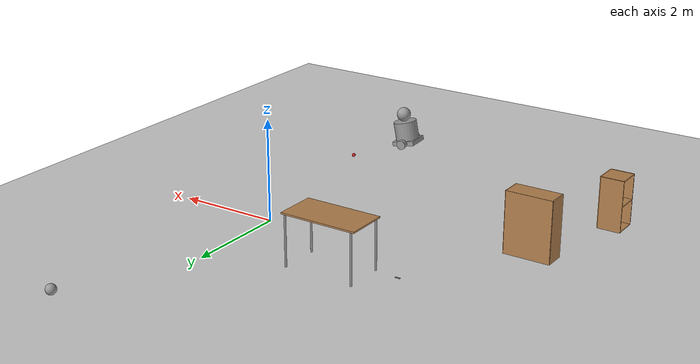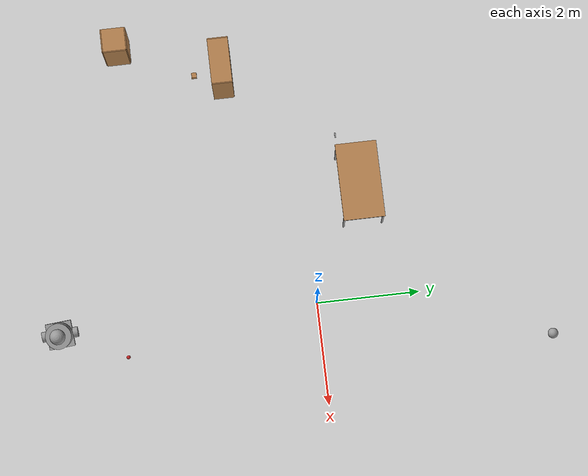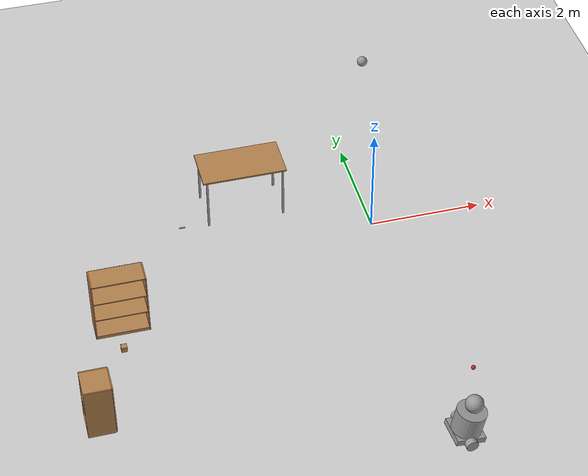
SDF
<sdf version="1.6">
 <world name="default">
  <model name="ground_plane">
   <static>1</static>
   <link name="link">
    <collision name="collision">
     <geometry><plane><normal>0 0 1</normal><size>100 100</size></plane></geometry>
     <surface>
      <contact><collide_bitmask>65535</collide_bitmask></contact>
      <friction><ode><mu>100</mu><mu2>50</mu2></ode></friction>
     </surface>
    </collision>
    <visual name="visual">
     <cast_shadows>0</cast_shadows>
     <geometry><plane><normal>0 0 1</normal><size>100 100</size></plane></geometry>
     <material>
      <script><uri>file://media/materials/scripts/gazebo.material</uri><name>Gazebo/Grey</name></script>
     </material>
    </visual>
   </link>
  </model>
  <model name="bookshelf">
   <static>1</static>
   <link name="link">
    <inertial><mass>1</mass></inertial>
    <collision name="back">
     <pose>0 0.005 0.6 0 -0 0</pose>
     <geometry><box><size>0.9 0.01 1.2</size></box></geometry>
    </collision>
    <visual name="visual1">
     <pose>0 0.005 0.6 0 -0 0</pose>
     <geometry><box><size>0.9 0.01 1.2</size></box></geometry>
     <material>
      <script><uri>file://media/materials/scripts/gazebo.material</uri><name>Gazebo/Wood</name></script>
     </material>
    </visual>
    <collision name="left_side">
     <pose>0.45 -0.195 0.6 0 -0 0</pose>
     <geometry><box><size>0.02 0.4 1.2</size></box></geometry>
    </collision>
    <visual name="visual2">
     <pose>0.45 -0.195 0.6 0 -0 0</pose>
     <geometry><box><size>0.02 0.4 1.2</size></box></geometry>
     <material>
      <script><uri>file://media/materials/scripts/gazebo.material</uri><name>Gazebo/Wood</name></script>
     </material>
    </visual>
    <collision name="right_side">
     <pose>-0.45 -0.195 0.6 0 -0 0</pose>
     <geometry><box><size>0.02 0.4 1.2</size></box></geometry>
    </collision>
    <visual name="visual3">
     <pose>-0.45 -0.195 0.6 0 -0 0</pose>
     <geometry><box><size>0.02 0.4 1.2</size></box></geometry>
     <material>
      <script><uri>file://media/materials/scripts/gazebo.material</uri><name>Gazebo/Wood</name></script>
     </material>
    </visual>
    <collision name="bottom">
     <pose>0 -0.195 0.03 0 -0 0</pose>
     <geometry><box><size>0.88 0.4 0.06</size></box></geometry>
    </collision>
    <visual name="visual4">
     <pose>0 -0.195 0.03 0 -0 0</pose>
     <geometry><box><size>0.88 0.4 0.06</size></box></geometry>
     <material>
      <script><uri>file://media/materials/scripts/gazebo.material</uri><name>Gazebo/Wood</name></script>
     </material>
    </visual>
    <collision name="top">
     <pose>0 -0.195 1.19 0 -0 0</pose>
     <geometry><box><size>0.88 0.4 0.02</size></box></geometry>
    </collision>
    <visual name="visual5">
     <pose>0 -0.195 1.19 0 -0 0</pose>
     <geometry><box><size>0.88 0.4 0.02</size></box></geometry>
     <material>
      <script><uri>file://media/materials/scripts/gazebo.material</uri><name>Gazebo/Wood</name></script>
     </material>
    </visual>
    <collision name="low_shelf">
     <pose>0 -0.195 0.43 0 -0 0</pose>
     <geometry><box><size>0.88 0.4 0.02</size></box></geometry>
    </collision>
    <visual name="visual6">
     <pose>0 -0.195 0.43 0 -0 0</pose>
     <geometry><box><size>0.88 0.4 0.02</size></box></geometry>
     <material>
      <script><uri>file://media/materials/scripts/gazebo.material</uri><name>Gazebo/Wood</name></script>
     </material>
    </visual>
    <collision name="high_shelf">
     <pose>0 -0.195 0.8 0 -0 0</pose>
     <geometry><box><size>0.88 0.4 0.02</size></box></geometry>
    </collision>
    <visual name="visual7">
     <pose>0 -0.195 0.8 0 -0 0</pose>
     <geometry><box><size>0.88 0.4 0.02</size></box></geometry>
     <material>
      <script><uri>file://media/materials/scripts/gazebo.material</uri><name>Gazebo/Wood</name></script>
     </material>
    </visual>
   </link>
   <pose>-4.75283 -1.15714 0 0 -0 0</pose>
  </model>
  <model name="cabinet">
   <static>1</static>
   <link name="cabinet_bottom_plate">
    <inertial>
     <pose>0 0 -1 0 -0 0</pose>
     <inertia><ixx>2.05</ixx><ixy>0</ixy><ixz>0</ixz><iyy>2.05</iyy><iyz>0</iyz><izz>2.05</izz></inertia>
     <mass>25</mass>
    </inertial>
    <collision name="cabinet_bottom_plate_geom">
     <pose>0 0 0.01 0 -0 0</pose>
     <geometry><box><size>0.45 0.45 0.02</size></box></geometry>
    </collision>
    <visual name="cabinet_bottom_plate_geom_visual">
     <pose>0 0 0.01 0 -0 0</pose>
     <geometry><box><size>0.45 0.45 0.02</size></box></geometry>
     <material>
      <script><uri>file://media/materials/scripts/gazebo.material</uri><name>Gazebo/Wood</name></script>
     </material>
    </visual>
    <collision name="cabinet_bottom_plate_geom_cabinet_back_plate">
     <pose>0.235 0 0.51 0 -0 0</pose>
     <geometry><box><size>0.02 0.45 1.02</size></box></geometry>
    </collision>
    <visual name="cabinet_bottom_plate_geom_cabinet_back_plate_visual">
     <pose>0.235 0 0.51 0 -0 0</pose>
     <geometry><box><size>0.02 0.45 1.02</size></box></geometry>
     <material>
      <script><uri>file://media/materials/scripts/gazebo.material</uri><name>Gazebo/Wood</name></script>
     </material>
    </visual>
    <collision name="cabinet_bottom_plate_geom_cabinet_left_plate">
     <pose>0 0.235 0.51 0 -0 0</pose>
     <geometry><box><size>0.45 0.02 1.02</size></box></geometry>
    </collision>
    <visual name="cabinet_bottom_plate_geom_cabinet_left_plate_visual">
     <pose>0 0.235 0.51 0 -0 0</pose>
     <geometry><box><size>0.45 0.02 1.02</size></box></geometry>
     <material>
      <script><uri>file://media/materials/scripts/gazebo.material</uri><name>Gazebo/Wood</name></script>
     </material>
    </visual>
    <collision name="cabinet_bottom_plate_geom_cabinet_middle_plate">
     <pose>0 0 0.51 0 -0 0</pose>
     <geometry><box><size>0.45 0.45 0.02</size></box></geometry>
    </collision>
    <visual name="cabinet_bottom_plate_geom_cabinet_middle_plate_visual">
     <pose>0 0 0.51 0 -0 0</pose>
     <geometry><box><size>0.45 0.45 0.02</size></box></geometry>
     <material>
      <script><uri>file://media/materials/scripts/gazebo.material</uri><name>Gazebo/Wood</name></script>
     </material>
    </visual>
    <collision name="cabinet_bottom_plate_geom_cabinet_right_plate">
     <pose>0 -0.235 0.51 0 -0 0</pose>
     <geometry><box><size>0.45 0.02 1.02</size></box></geometry>
    </collision>
    <visual name="cabinet_bottom_plate_geom_cabinet_right_plate_visual">
     <pose>0 -0.235 0.51 0 -0 0</pose>
     <geometry><box><size>0.45 0.02 1.02</size></box></geometry>
     <material>
      <script><uri>file://media/materials/scripts/gazebo.material</uri><name>Gazebo/Wood</name></script>
     </material>
    </visual>
    <collision name="cabinet_bottom_plate_geom_cabinet_top_plate">
     <pose>0 0 1.01 0 -0 0</pose>
     <geometry><box><size>0.45 0.45 0.02</size></box></geometry>
    </collision>
    <visual name="cabinet_bottom_plate_geom_cabinet_top_plate_visual">
     <pose>0 0 1.01 0 -0 0</pose>
     <geometry><box><size>0.45 0.45 0.02</size></box></geometry>
     <material>
      <script><uri>file://media/materials/scripts/gazebo.material</uri><name>Gazebo/Wood</name></script>
     </material>
    </visual>
   </link>
   <pose>-5.45597 -3.36278 0 0 -0 0</pose>
  </model>
  <model name="RoboModel_0">
   <link name="link_0">
    <pose>0.004 1e-06 -0.17 0 -0 0</pose>
    <inertial>
     <mass>1</mass>
     <inertia>
      <ixx>0.166667</ixx>
      <ixy>0</ixy>
      <ixz>0</ixz>
      <iyy>0.166667</iyy>
      <iyz>0</iyz>
      <izz>0.166667</izz>
     </inertia>
    </inertial>
    <visual name="visual">
     <geometry><box><size>0.5 0.5 0.1</size></box></geometry>
     <material>
      <lighting>1</lighting>
      <script><uri>file://media/materials/scripts/gazebo.material</uri><name>Gazebo/Grey</name></script>
      <shader type="pixel"><normal_map>__default__</normal_map></shader>
      <ambient>0.3 0.3 0.3 1</ambient>
      <diffuse>0.7 0.7 0.7 1</diffuse>
      <specular>0.01 0.01 0.01 1</specular>
      <emissive>0 0 0 1</emissive>
     </material>
    </visual>
    <collision name="collision">
     <geometry><box><size>0.5 0.5 0.1</size></box></geometry>
     <surface>
      <friction>
       <ode><mu>1</mu><mu2>1</mu2><fdir1>0 0 0</fdir1><slip1>0</slip1><slip2>0</slip2></ode>
       <torsional>
        <coefficient>1</coefficient>
        <patch_radius>0</patch_radius>
        <surface_radius>0</surface_radius>
        <use_patch_radius>1</use_patch_radius>
        <ode><slip>0</slip></ode>
       </torsional>
      </friction>
      <bounce><restitution_coefficient>0</restitution_coefficient><threshold>1e+06</threshold></bounce>
      <contact>
       <collide_without_contact>0</collide_without_contact>
       <collide_without_contact_bitmask>1</collide_without_contact_bitmask>
       <collide_bitmask>1</collide_bitmask>
       <ode>
        <soft_cfm>0</soft_cfm>
        <soft_erp>0.2</soft_erp>
        <kp>1e+13</kp>
        <kd>1</kd>
        <max_vel>0.01</max_vel>
        <min_depth>0</min_depth>
       </ode>
       <bullet>
        <split_impulse>1</split_impulse>
        <split_impulse_penetration_threshold>-0.01</split_impulse_penetration_threshold>
        <soft_cfm>0</soft_cfm>
        <soft_erp>0.2</soft_erp>
        <kp>1e+13</kp>
        <kd>1</kd>
       </bullet>
      </contact>
     </surface>
    </collision>
   </link>
   <link name="link_1">
    <pose>0.004 1e-06 0.08 0 -0 0</pose>
    <inertial>
     <mass>1</mass>
     <inertia><ixx>0.145833</ixx><ixy>0</ixy><ixz>0</ixz><iyy>0.145833</iyy><iyz>0</iyz><izz>0.125</izz></inertia>
    </inertial>
    <visual name="visual">
     <geometry><cylinder><radius>0.25</radius><length>0.4</length></cylinder></geometry>
     <material>
      <lighting>1</lighting>
      <script><uri>file://media/materials/scripts/gazebo.material</uri><name>Gazebo/Grey</name></script>
      <shader type="pixel"><normal_map>__default__</normal_map></shader>
      <ambient>0.3 0.3 0.3 1</ambient>
      <diffuse>0.7 0.7 0.7 1</diffuse>
      <specular>0.01 0.01 0.01 1</specular>
      <emissive>0 0 0 1</emissive>
     </material>
    </visual>
    <collision name="collision">
     <geometry><cylinder><radius>0.25</radius><length>0.4</length></cylinder></geometry>
     <surface>
      <friction>
       <ode><mu>1</mu><mu2>1</mu2><fdir1>0 0 0</fdir1><slip1>0</slip1><slip2>0</slip2></ode>
       <torsional>
        <coefficient>1</coefficient>
        <patch_radius>0</patch_radius>
        <surface_radius>0</surface_radius>
        <use_patch_radius>1</use_patch_radius>
        <ode><slip>0</slip></ode>
       </torsional>
      </friction>
      <bounce><restitution_coefficient>0</restitution_coefficient><threshold>1e+06</threshold></bounce>
      <contact>
       <collide_without_contact>0</collide_without_contact>
       <collide_without_contact_bitmask>1</collide_without_contact_bitmask>
       <collide_bitmask>1</collide_bitmask>
       <ode>
        <soft_cfm>0</soft_cfm>
        <soft_erp>0.2</soft_erp>
        <kp>1e+13</kp>
        <kd>1</kd>
        <max_vel>0.01</max_vel>
        <min_depth>0</min_depth>
       </ode>
       <bullet>
        <split_impulse>1</split_impulse>
        <split_impulse_penetration_threshold>-0.01</split_impulse_penetration_threshold>
        <soft_cfm>0</soft_cfm>
        <soft_erp>0.2</soft_erp>
        <kp>1e+13</kp>
        <kd>1</kd>
       </bullet>
      </contact>
     </surface>
    </collision>
   </link>
   <link name="link_4">
    <pose>0.004 1e-06 0.43 0 -0 0</pose>
    <inertial>
     <mass>1</mass>
     <inertia><ixx>0.1</ixx><ixy>0</ixy><ixz>0</ixz><iyy>0.1</iyy><iyz>0</iyz><izz>0.1</izz></inertia>
    </inertial>
    <visual name="visual">
     <geometry><sphere><radius>0.15</radius></sphere></geometry>
     <material>
      <lighting>1</lighting>
      <script><uri>file://media/materials/scripts/gazebo.material</uri><name>Gazebo/Grey</name></script>
      <shader type="pixel"><normal_map>__default__</normal_map></shader>
      <ambient>0.3 0.3 0.3 1</ambient>
      <diffuse>0.7 0.7 0.7 1</diffuse>
      <specular>0.01 0.01 0.01 1</specular>
      <emissive>0 0 0 1</emissive>
     </material>
    </visual>
    <collision name="collision">
     <geometry><sphere><radius>0.15</radius></sphere></geometry>
     <surface>
      <friction>
       <ode><mu>1</mu><mu2>1</mu2><fdir1>0 0 0</fdir1><slip1>0</slip1><slip2>0</slip2></ode>
       <torsional>
        <coefficient>1</coefficient>
        <patch_radius>0</patch_radius>
        <surface_radius>0</surface_radius>
        <use_patch_radius>1</use_patch_radius>
        <ode><slip>0</slip></ode>
       </torsional>
      </friction>
      <bounce><restitution_coefficient>0</restitution_coefficient><threshold>1e+06</threshold></bounce>
      <contact>
       <collide_without_contact>0</collide_without_contact>
       <collide_without_contact_bitmask>1</collide_without_contact_bitmask>
       <collide_bitmask>1</collide_bitmask>
       <ode>
        <soft_cfm>0</soft_cfm>
        <soft_erp>0.2</soft_erp>
        <kp>1e+13</kp>
        <kd>1</kd>
        <max_vel>0.01</max_vel>
        <min_depth>0</min_depth>
       </ode>
       <bullet>
        <split_impulse>1</split_impulse>
        <split_impulse_penetration_threshold>-0.01</split_impulse_penetration_threshold>
        <soft_cfm>0</soft_cfm>
        <soft_erp>0.2</soft_erp>
        <kp>1e+13</kp>
        <kd>1</kd>
       </bullet>
      </contact>
     </surface>
    </collision>
   </link>
   <link name="link_5">
    <pose>-0.016 -0.300012 -0.17 1.5707 -0 0</pose>
    <inertial>
     <mass>1</mass>
     <inertia><ixx>0.145833</ixx><ixy>0</ixy><ixz>0</ixz><iyy>0.145833</iyy><iyz>0</iyz><izz>0.125</izz></inertia>
    </inertial>
    <visual name="visual">
     <geometry><cylinder><radius>0.1</radius><length>0.1</length></cylinder></geometry>
     <material>
      <lighting>1</lighting>
      <script><uri>file://media/materials/scripts/gazebo.material</uri><name>Gazebo/Grey</name></script>
      <shader type="pixel"><normal_map>__default__</normal_map></shader>
      <ambient>0.3 0.3 0.3 1</ambient>
      <diffuse>0.7 0.7 0.7 1</diffuse>
      <specular>0.01 0.01 0.01 1</specular>
      <emissive>0 0 0 1</emissive>
     </material>
    </visual>
    <collision name="collision">
     <geometry><cylinder><radius>0.1</radius><length>0.1</length></cylinder></geometry>
     <surface>
      <friction>
       <ode><mu>1</mu><mu2>1</mu2><fdir1>0 0 0</fdir1><slip1>0</slip1><slip2>0</slip2></ode>
       <torsional>
        <coefficient>1</coefficient>
        <patch_radius>0</patch_radius>
        <surface_radius>0</surface_radius>
        <use_patch_radius>1</use_patch_radius>
        <ode><slip>0</slip></ode>
       </torsional>
      </friction>
      <bounce><restitution_coefficient>0</restitution_coefficient><threshold>1e+06</threshold></bounce>
      <contact>
       <collide_without_contact>0</collide_without_contact>
       <collide_without_contact_bitmask>1</collide_without_contact_bitmask>
       <collide_bitmask>1</collide_bitmask>
       <ode>
        <soft_cfm>0</soft_cfm>
        <soft_erp>0.2</soft_erp>
        <kp>1e+13</kp>
        <kd>1</kd>
        <max_vel>0.01</max_vel>
        <min_depth>0</min_depth>
       </ode>
       <bullet>
        <split_impulse>1</split_impulse>
        <split_impulse_penetration_threshold>-0.01</split_impulse_penetration_threshold>
        <soft_cfm>0</soft_cfm>
        <soft_erp>0.2</soft_erp>
        <kp>1e+13</kp>
        <kd>1</kd>
       </bullet>
      </contact>
     </surface>
    </collision>
   </link>
   <link name="link_5_clone">
    <pose>0.004 0.30001 -0.17 1.5707 -0 0</pose>
    <inertial>
     <mass>1</mass>
     <inertia><ixx>0.145833</ixx><ixy>0</ixy><ixz>0</ixz><iyy>0.145833</iyy><iyz>0</iyz><izz>0.125</izz></inertia>
    </inertial>
    <visual name="visual">
     <geometry><cylinder><radius>0.1</radius><length>0.1</length></cylinder></geometry>
     <material>
      <lighting>1</lighting>
      <script><uri>file://media/materials/scripts/gazebo.material</uri><name>Gazebo/Grey</name></script>
      <shader type="pixel"><normal_map>__default__</normal_map></shader>
      <ambient>0.3 0.3 0.3 1</ambient>
      <diffuse>0.7 0.7 0.7 1</diffuse>
      <specular>0.01 0.01 0.01 1</specular>
      <emissive>0 0 0 1</emissive>
     </material>
    </visual>
    <collision name="collision">
     <geometry><cylinder><radius>0.1</radius><length>0.1</length></cylinder></geometry>
     <surface>
      <friction>
       <ode><mu>1</mu><mu2>1</mu2><fdir1>0 0 0</fdir1><slip1>0</slip1><slip2>0</slip2></ode>
       <torsional>
        <coefficient>1</coefficient>
        <patch_radius>0</patch_radius>
        <surface_radius>0</surface_radius>
        <use_patch_radius>1</use_patch_radius>
        <ode><slip>0</slip></ode>
       </torsional>
      </friction>
      <bounce><restitution_coefficient>0</restitution_coefficient><threshold>1e+06</threshold></bounce>
      <contact>
       <collide_without_contact>0</collide_without_contact>
       <collide_without_contact_bitmask>1</collide_without_contact_bitmask>
       <collide_bitmask>1</collide_bitmask>
       <ode>
        <soft_cfm>0</soft_cfm>
        <soft_erp>0.2</soft_erp>
        <kp>1e+13</kp>
        <kd>1</kd>
        <max_vel>0.01</max_vel>
        <min_depth>0</min_depth>
       </ode>
       <bullet>
        <split_impulse>1</split_impulse>
        <split_impulse_penetration_threshold>-0.01</split_impulse_penetration_threshold>
        <soft_cfm>0</soft_cfm>
        <soft_erp>0.2</soft_erp>
        <kp>1e+13</kp>
        <kd>1</kd>
       </bullet>
      </contact>
     </surface>
    </collision>
   </link>
   <joint name="link_0_JOINT_2" type="revolute">
    <parent>link_0</parent>
    <child>link_5_clone</child>
    <axis>
     <xyz>0 0 1</xyz>
     <use_parent_model_frame>0</use_parent_model_frame>
     <limit>
      <lower>-1.79769e+308</lower>
      <upper>1.79769e+308</upper>
      <effort>-1</effort>
      <velocity>-1</velocity>
     </limit>
     <dynamics>
      <spring_reference>0</spring_reference>
      <spring_stiffness>0</spring_stiffness>
      <damping>0</damping>
     </dynamics>
    </axis>
    <physics>
     <ode><limit><cfm>0</cfm><erp>0.2</erp></limit><suspension><cfm>0</cfm><erp>0.2</erp></suspension></ode>
    </physics>
   </joint>
   <joint name="link_0_JOINT_3" type="revolute">
    <parent>link_0</parent>
    <child>link_5</child>
    <axis>
     <xyz>0 0 -1</xyz>
     <use_parent_model_frame>0</use_parent_model_frame>
     <limit>
      <lower>-1.79769e+308</lower>
      <upper>1.79769e+308</upper>
      <effort>-1</effort>
      <velocity>-1</velocity>
     </limit>
     <dynamics>
      <spring_reference>0</spring_reference>
      <spring_stiffness>0</spring_stiffness>
      <damping>0</damping>
     </dynamics>
    </axis>
    <physics>
     <ode><limit><cfm>0</cfm><erp>0.2</erp></limit><suspension><cfm>0</cfm><erp>0.2</erp></suspension></ode>
    </physics>
   </joint>
   <joint name="link_0_JOINT_4" type="revolute">
    <parent>link_0</parent>
    <child>link_1</child>
    <axis>
     <xyz>0 0 1</xyz>
     <use_parent_model_frame>0</use_parent_model_frame>
     <limit>
      <lower>-1.79769e+308</lower>
      <upper>1.79769e+308</upper>
      <effort>-1</effort>
      <velocity>-1</velocity>
     </limit>
     <dynamics>
      <spring_reference>0</spring_reference>
      <spring_stiffness>0</spring_stiffness>
      <damping>0</damping>
     </dynamics>
    </axis>
    <physics>
     <ode><limit><cfm>0</cfm><erp>0.2</erp></limit><suspension><cfm>0</cfm><erp>0.2</erp></suspension></ode>
    </physics>
   </joint>
   <joint name="link_1_JOINT_5" type="ball">
    <parent>link_1</parent>
    <child>link_4</child>
    <physics>
     <ode><limit><cfm>0</cfm><erp>0.2</erp></limit><suspension><cfm>0</cfm><erp>0.2</erp></suspension></ode>
    </physics>
   </joint>
   <static>0</static>
   <pose>0.089488 -5.02091 0.26603 0.006483 0.192107 0.084256</pose>
  </model>
  <model name="cricket_ball">
   <link name="link">
    <pose>0 0 0.0375 0 -0 0</pose>
    <inertial>
     <mass>0.1467</mass>
     <inertia>
      <ixx>8.25187e-05</ixx>
      <ixy>0</ixy>
      <ixz>0</ixz>
      <iyy>8.25187e-05</iyy>
      <iyz>0</iyz>
      <izz>8.25187e-05</izz>
     </inertia>
    </inertial>
    <collision name="collision">
     <geometry><sphere><radius>0.0375</radius></sphere></geometry>
     <surface>
      <contact>
       <poissons_ratio>0.347</poissons_ratio>
       <elastic_modulus>8.8e+09</elastic_modulus>
       <ode><kp>100000</kp><kd>100</kd><max_vel>100</max_vel><min_depth>0.001</min_depth></ode>
      </contact>
      <friction>
       <torsional>
        <coefficient>1</coefficient>
        <use_patch_radius>0</use_patch_radius>
        <surface_radius>0.01</surface_radius>
       </torsional>
      </friction>
     </surface>
    </collision>
    <visual name="visual">
     <geometry><sphere><radius>0.0375</radius></sphere></geometry>
     <material>
      <script><uri>file://media/materials/scripts/gazebo.material</uri><name>Gazebo/Red</name></script>
     </material>
    </visual>
    <velocity_decay><linear>0</linear><angular>0.005</angular></velocity_decay>
   </link>
   <pose>0.637518 -3.75313 -0.001014 0 -0 0</pose>
  </model>
  <model name="stone_10_2_5_1cm">
   <link name="link">
    <pose>0 0 0.005 0 -0 0</pose>
    <inertial>
     <mass>0.0628</mass>
     <inertia>
      <ixx>3.79417e-06</ixx>
      <ixy>0</ixy>
      <ixz>0</ixz>
      <iyy>5.28567e-05</iyy>
      <iyz>0</iyz>
      <izz>5.56042e-05</izz>
     </inertia>
    </inertial>
    <collision name="collision">
     <geometry><box><size>0.1 0.025 0.01</size></box></geometry>
     <surface>
      <contact>
       <poissons_ratio>0.15</poissons_ratio>
       <elastic_modulus>8e+10</elastic_modulus>
       <ode><kp>100000</kp><kd>100</kd><max_vel>100</max_vel><min_depth>0.001</min_depth></ode>
      </contact>
      <friction>
       <torsional>
        <coefficient>1</coefficient>
        <use_patch_radius>0</use_patch_radius>
        <surface_radius>0.01</surface_radius>
       </torsional>
      </friction>
     </surface>
    </collision>
    <visual name="visual">
     <geometry><box><size>0.1 0.025 0.01</size></box></geometry>
     <material>
      <script><uri>file://media/materials/scripts/gazebo.material</uri><name>Gazebo/Grey</name></script>
     </material>
    </visual>
   </link>
   <pose>-3.29322 0.744623 -0.001002 0 -0 0</pose>
  </model>
  <model name="table">
   <static>1</static>
   <link name="link">
    <collision name="surface">
     <pose>0 0 1 0 -0 0</pose>
     <geometry><box><size>1.5 0.8 0.03</size></box></geometry>
     <surface><friction><ode><mu>0.6</mu><mu2>0.6</mu2></ode></friction></surface>
    </collision>
    <visual name="visual1">
     <pose>0 0 1 0 -0 0</pose>
     <geometry><box><size>1.5 0.8 0.03</size></box></geometry>
     <material>
      <script><uri>file://media/materials/scripts/gazebo.material</uri><name>Gazebo/Wood</name></script>
     </material>
    </visual>
    <collision name="front_left_leg">
     <pose>0.68 0.38 0.5 0 -0 0</pose>
     <geometry><cylinder><radius>0.02</radius><length>1</length></cylinder></geometry>
    </collision>
    <visual name="front_left_leg">
     <pose>0.68 0.38 0.5 0 -0 0</pose>
     <geometry><cylinder><radius>0.02</radius><length>1</length></cylinder></geometry>
     <material>
      <script><uri>file://media/materials/scripts/gazebo.material</uri><name>Gazebo/Grey</name></script>
     </material>
    </visual>
    <collision name="front_right_leg">
     <pose>0.68 -0.38 0.5 0 -0 0</pose>
     <geometry><cylinder><radius>0.02</radius><length>1</length></cylinder></geometry>
    </collision>
    <visual name="front_right_leg">
     <pose>0.68 -0.38 0.5 0 -0 0</pose>
     <geometry><cylinder><radius>0.02</radius><length>1</length></cylinder></geometry>
     <material>
      <script><uri>file://media/materials/scripts/gazebo.material</uri><name>Gazebo/Grey</name></script>
     </material>
    </visual>
    <collision name="back_right_leg">
     <pose>-0.68 -0.38 0.5 0 -0 0</pose>
     <geometry><cylinder><radius>0.02</radius><length>1</length></cylinder></geometry>
    </collision>
    <visual name="back_right_leg">
     <pose>-0.68 -0.38 0.5 0 -0 0</pose>
     <geometry><cylinder><radius>0.02</radius><length>1</length></cylinder></geometry>
     <material>
      <script><uri>file://media/materials/scripts/gazebo.material</uri><name>Gazebo/Grey</name></script>
     </material>
    </visual>
    <collision name="back_left_leg">
     <pose>-0.68 0.38 0.5 0 -0 0</pose>
     <geometry><cylinder><radius>0.02</radius><length>1</length></cylinder></geometry>
    </collision>
    <visual name="back_left_leg">
     <pose>-0.68 0.38 0.5 0 -0 0</pose>
     <geometry><cylinder><radius>0.02</radius><length>1</length></cylinder></geometry>
     <material>
      <script><uri>file://media/materials/scripts/gazebo.material</uri><name>Gazebo/Grey</name></script>
     </material>
    </visual>
   </link>
   <pose>-2.13063 1.07143 0 0 -0 0</pose>
  </model>
  <model name="wood_cube_10cm">
   <link name="link">
    <pose>0 0 0.05 0 -0 0</pose>
    <inertial>
     <mass>0.5167</mass>
     <inertia>
      <ixx>0.000861167</ixx>
      <ixy>0</ixy>
      <ixz>0</ixz>
      <iyy>0.000861167</iyy>
      <iyz>0</iyz>
      <izz>0.000861167</izz>
     </inertia>
    </inertial>
    <collision name="collision">
     <geometry><box><size>0.1 0.1 0.1</size></box></geometry>
     <surface>
      <contact>
       <poissons_ratio>0.347</poissons_ratio>
       <elastic_modulus>8.8e+09</elastic_modulus>
       <ode><kp>100000</kp><kd>100</kd><max_vel>100</max_vel><min_depth>0.001</min_depth></ode>
      </contact>
      <friction>
       <torsional>
        <coefficient>1</coefficient>
        <use_patch_radius>0</use_patch_radius>
        <surface_radius>0.01</surface_radius>
       </torsional>
      </friction>
     </surface>
    </collision>
    <visual name="visual">
     <geometry><box><size>0.1 0.1 0.1</size></box></geometry>
     <material>
      <script><uri>file://media/materials/scripts/gazebo.material</uri><name>Gazebo/Wood</name></script>
     </material>
    </visual>
   </link>
   <pose>-4.80856 -1.90111 -0.001013 0 -0 0</pose>
  </model>
  <model name="my_ball">
   <link name="link_0">
    <inertial>
     <mass>1</mass>
     <inertia><ixx>0.1</ixx><ixy>0</ixy><ixz>0</ixz><iyy>0.1</iyy><iyz>0</iyz><izz>0.1</izz></inertia>
    </inertial>
    <visual name="visual">
     <geometry><sphere><radius>0.1</radius></sphere></geometry>
     <material>
      <lighting>1</lighting>
      <script><uri>file://media/materials/scripts/gazebo.material</uri><name>Gazebo/Grey</name></script>
      <shader type="pixel"><normal_map>__default__</normal_map></shader>
      <ambient>1 1 1 1</ambient>
      <diffuse>1 1 1 1</diffuse>
      <specular>1 1 1 1</specular>
      <emissive>1 1 1 1</emissive>
     </material>
    </visual>
    <collision name="collision">
     <geometry><sphere><radius>0.1</radius></sphere></geometry>
     <surface>
      <friction>
       <ode><mu>1</mu><mu2>1</mu2><fdir1>0 0 0</fdir1><slip1>0</slip1><slip2>0</slip2></ode>
       <torsional>
        <coefficient>1</coefficient>
        <patch_radius>0</patch_radius>
        <surface_radius>0</surface_radius>
        <use_patch_radius>1</use_patch_radius>
        <ode><slip>0</slip></ode>
       </torsional>
      </friction>
      <bounce><restitution_coefficient>0</restitution_coefficient><threshold>1e+06</threshold></bounce>
      <contact>
       <collide_without_contact>0</collide_without_contact>
       <collide_without_contact_bitmask>1</collide_without_contact_bitmask>
       <collide_bitmask>1</collide_bitmask>
       <ode>
        <soft_cfm>0</soft_cfm>
        <soft_erp>0.2</soft_erp>
        <kp>1e+13</kp>
        <kd>1</kd>
        <max_vel>0.01</max_vel>
        <min_depth>0</min_depth>
       </ode>
       <bullet>
        <split_impulse>1</split_impulse>
        <split_impulse_penetration_threshold>-0.01</split_impulse_penetration_threshold>
        <soft_cfm>0</soft_cfm>
        <soft_erp>0.2</soft_erp>
        <kp>1e+13</kp>
        <kd>1</kd>
       </bullet>
      </contact>
     </surface>
    </collision>
   </link>
   <static>0</static>
   <pose>1.12258 4.47625 0.1 0 -0 0</pose>
  </model>
 </world>
</sdf>
